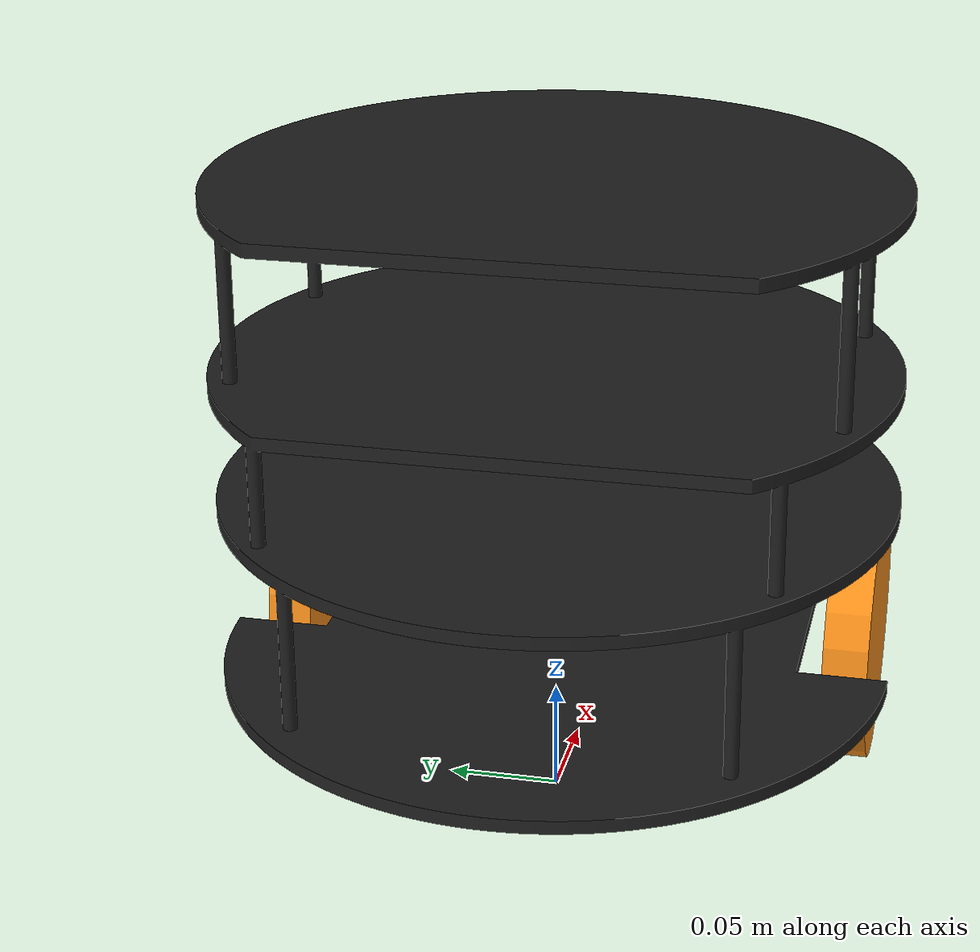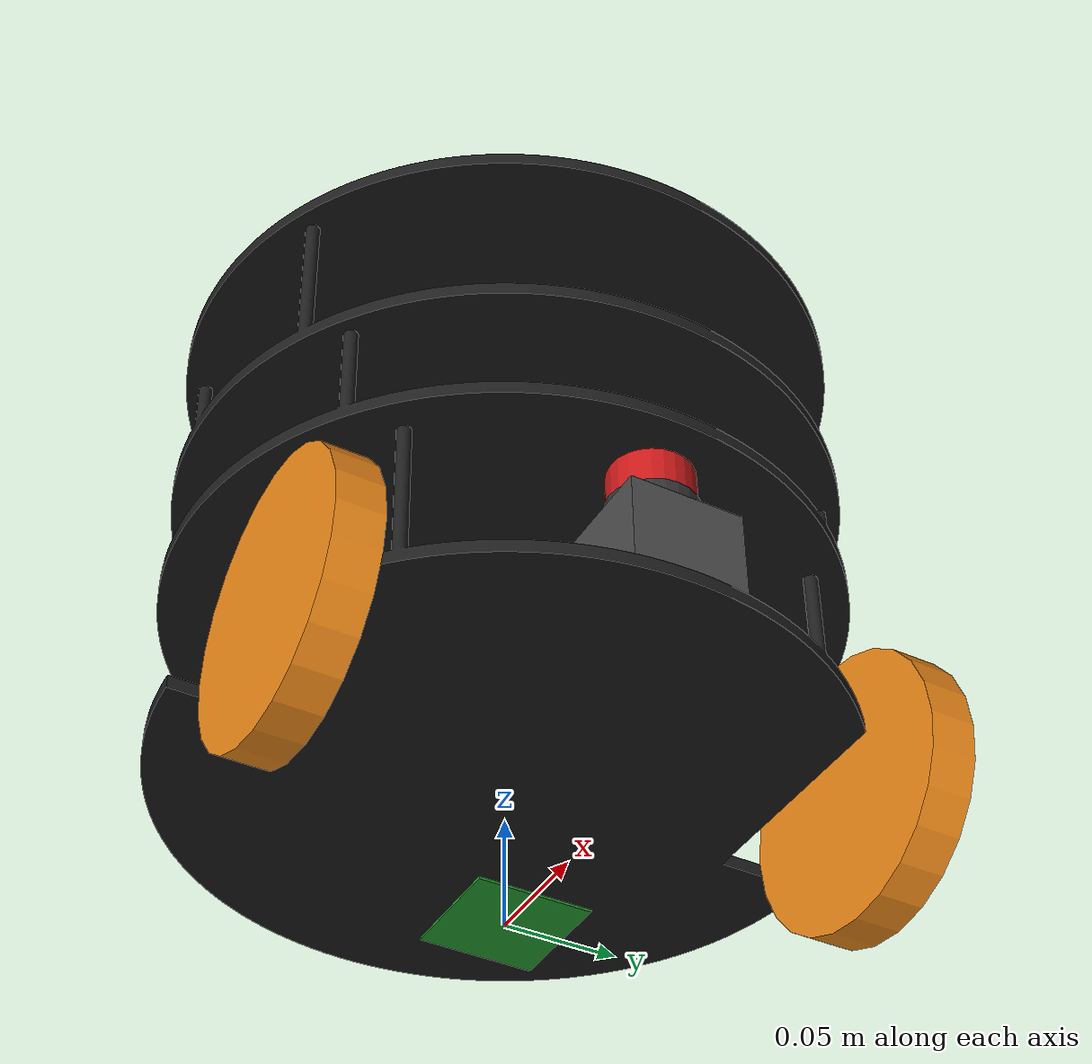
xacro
<?xml version="1.0"?>

<robot name="pi_robot" xmlns:xacro="http://ros.org/wiki/xacro">

   <!-- Define a number of dimensions using properties -->
   <property name="laser_offset_x" value="0.122" />
   <property name="laser_offset_y" value="0.0" />
   <property name="laser_offset_z" value="0.026" />

   <!-- Include all component files -->
   <xacro:include filename="$(find rbx2_description)/urdf/materials.urdf.xacro" />
   <xacro:include filename="$(find rbx2_description)/urdf/pi_robot/pi_base.urdf.xacro" />
   <xacro:include filename="$(find rbx2_description)/urdf/sensors/laser.urdf.xacro" />

   <!-- Add the base and wheels -->
   <base name="base" color="Black"/>

   <!-- Attach the laser -->
   <laser parent="base" color="DarkGrey">
      <origin xyz="${laser_offset_x} ${laser_offset_y} ${laser_offset_z}" rpy="0 0 0 " />
   </laser>

</robot>

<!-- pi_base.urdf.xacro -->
<robot name="base" xmlns:xacro="http://ros.org/wiki/xacro">

  <!-- Define a number of dimensions using properties -->
  <property name="wheel_length" value="0.02032" />
  <property name="wheel_radius" value="0.06191" />
  <property name="wheel_offset_x" value="0.07" />
  <property name="wheel_offset_y" value="0.13" />
  <property name="wheel_offset_z" value="-0.0035" />

  <property name="base_radius" value="0.152" />
  <property name="base_height" value="0.241" />

  <property name="base_mesh_scale" value="0.0254" />

  <property name="PI" value="3.1415" />

  <!-- define a wheel -->
  <macro name="wheel" params="suffix parent reflect color">
    <joint name="${parent}_${suffix}_wheel_joint" type="continuous">
      <axis xyz="0 0 1" />
      <limit effort="100" velocity="100"/>
      <safety_controller k_velocity="10" />
      <origin xyz="${wheel_offset_x} ${reflect*wheel_offset_y} ${wheel_offset_z}" rpy="${reflect*1.57} 0 0" />
      <parent link="${parent}_link"/>
      <child link="${parent}_${suffix}_wheel_link"/>
    </joint>
    <link name="${parent}_${suffix}_wheel_link">
      <visual>
        <origin xyz="0 0 0" rpy="0 0 0" />
        <geometry>
          <cylinder radius="${wheel_radius}" length="${wheel_length}"/>
        </geometry>
        <material name="${color}" />
      </visual>
    </link>
  </macro>

  <!-- The base xacro macro -->
  <macro name="base" params="name color">
    <link name="${name}_link">
      <visual>
        <origin xyz="0 0 0" rpy="0 0 ${PI/2}" />
        <geometry>
           <mesh filename="package://rbx2_description/meshes/pi_robot/pi_robot_base.stl" scale="${base_mesh_scale} ${base_mesh_scale} ${base_mesh_scale}" />
        </geometry>
        <material name="${color}" />
      </visual>
      <collision>
        <origin xyz="0 0 ${base_height/2}" rpy="0 0 0" />
        <geometry>
           <cylinder radius="${base_radius}" length="${base_height}"/>
        </geometry>
      </collision>
    </link>
  </macro>

  <link name="base_footprint">
      <visual>
        <origin xyz="0 0 0" rpy="0 0 0" />
        <geometry>
          <box size="0.05 0.05 0.001" />
        </geometry>
        <material name="TransparentGreen" />
      </visual>
  </link>

  <joint name="base_joint" type="fixed">
    <origin xyz="0 0 ${wheel_radius - wheel_offset_z}" rpy="0 0 0" />
    <parent link="base_footprint"/>
    <child link="base_link" />
  </joint>

   <!-- Add the drive wheels -->
   <wheel parent="base" suffix="l" reflect="1" color="Orange"/>
   <wheel parent="base" suffix="r" reflect="-1" color="Orange"/>

</robot>

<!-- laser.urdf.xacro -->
<robot name="laser" xmlns:xacro="http://ros.org/wiki/xacro">

  <!-- A box-and-cylinder model of the Hokuyo URG-04LX-UG01 laser scanner -->

  <!-- Define the laser macro -->
  <macro name="laser" params="parent color *origin">
    <joint name="${parent}_laser_bottom_joint" type="fixed">
      <xacro:insert_block name="origin" />
      <parent link="${parent}_link"/>
      <child link="base_laser_bottom"/>
    </joint>

   <link name="base_laser_bottom">
	 <visual>
        <origin xyz="0 0 0" rpy="0 0 0" />
        <geometry>
          <box size="0.05 0.05 0.041" />
        </geometry>
       <material name="${color}" />
     </visual>
     <collision>
        <origin xyz="0 0 0" rpy="0 0 0" />
      <geometry>
        <box size="0.05 0.05 0.041" />
      </geometry>
       </collision>
	 <inertial>
       <mass value="0.1" />
         <inertia ixx="0.001" ixy="0.0" ixz="0.0"
                   iyy="0.001" iyz="0.0"
                   izz="0.001" />
      </inertial>
   </link>

   <link name="base_laser_middle">
	 <visual>
        <origin xyz="0 0 0" rpy="0 0 0" />
		<geometry>
          <cylinder length="0.0115" radius=".02"/>
        </geometry>
        <material name="dark_grey">
           <color rgba="0.2 0.2 0.2 1.0"/>
        </material>
     </visual>
     <collision>
        <origin xyz="0 0 0" rpy="0 0 0" />
		 <geometry>
          <cylinder length="0.0115" radius=".02"/>
         </geometry>
       </collision>
	 <inertial>
       <mass value="0.1" />
         <inertia ixx="0.001" ixy="0.0" ixz="0.0"
                   iyy="0.001" iyz="0.0"
                   izz="0.001" />
      </inertial>
   </link>

   <joint name="base_laser_middle_joint" type="fixed">
     <parent link="base_laser_bottom"/>
     <child link="base_laser_middle" />
     <origin xyz="0 0 0.02625" rpy="0 0 0" />
   </joint>

   <link name="base_laser">
	 <visual>
        <origin xyz="0 0 0" rpy="0 0 0" />
		<geometry>
          <cylinder length="0.0175" radius=".0185"/>
        </geometry>
        <material name="red">
           <color rgba="0.8 0.1 0.1 1.0"/>
        </material>
     </visual>
     <collision>
        <origin xyz="0 0 0" rpy="0 0 0" />
		 <geometry>
          <cylinder length="0.0175" radius=".0185"/>
         </geometry>
       </collision>
	 <inertial>
       <mass value="0.1" />
         <inertia ixx="0.001" ixy="0.0" ixz="0.0"
                   iyy="0.001" iyz="0.0"
                   izz="0.001" />
      </inertial>
   </link>

   <joint name="base_laser_joint" type="fixed">
     <parent link="base_laser_middle"/>
     <child link="base_laser" />
     <origin xyz="0 0 0.0145" rpy="0 0 0" />
   </joint>

  </macro>

 </robot>
